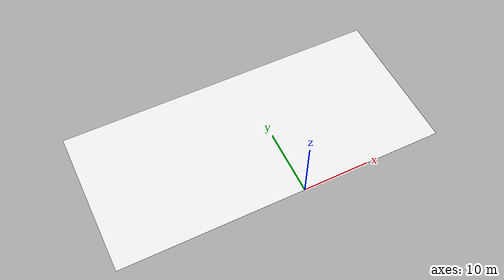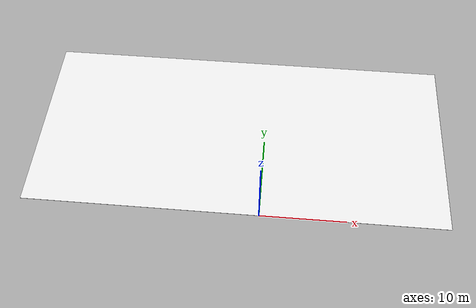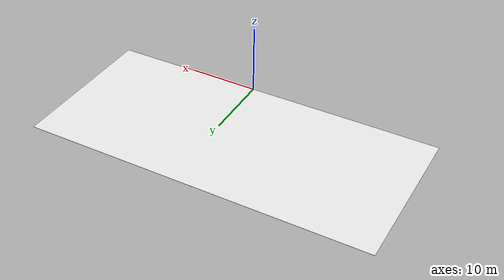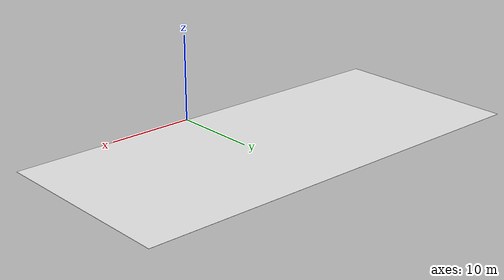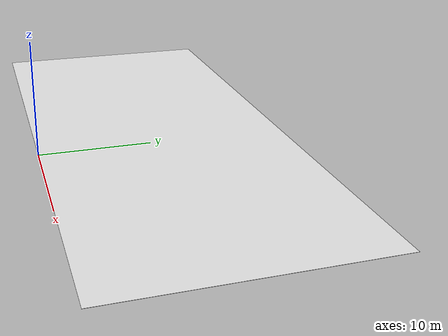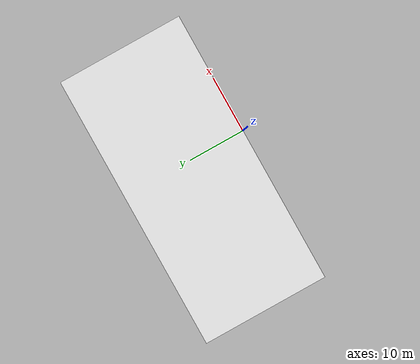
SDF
<sdf version="1.6">
 <world name="default">
  <model name="ceiling">
   <pose>-2.9699999999999998        11.25        3.0        0        3.141592653589793        0</pose>
   <static>true</static>
   <link name="link">
    <visual name="visual">
     <geometry><plane><normal>0 0 1</normal><size>49.5 22.5</size></plane></geometry>
     <material>
      <ambient>1 1 1 1</ambient>
      <diffuse>1 1 1 1</diffuse>
      <specular>0.2 0.2 0.2 1</specular>
      <pbr>
       <metal>
        <albedo_map>../media/materials/textures/ceiling.png</albedo_map>
        <metalness>0.0</metalness>
        <roughness>0.9</roughness>
       </metal>
      </pbr>
     </material>
    </visual>
   </link>
  </model>
  <model name="floor">
   <pose>-2.9699999999999998        11.25        -0.001        0        0        0</pose>
   <static>true</static>
   <link name="link">
    <visual name="visual">
     <geometry><plane><normal>0 0 1</normal><size>49.5 22.5</size></plane></geometry>
     <material>
      <ambient>1 1 1 1</ambient>
      <diffuse>1 1 1 1</diffuse>
      <specular>0.2 0.2 0.2 1</specular>
      <pbr>
       <metal>
        <albedo_map>../media/materials/textures/hallway.png</albedo_map>
        <metalness>0.0</metalness>
        <roughness>0.9</roughness>
       </metal>
      </pbr>
     </material>
    </visual>
    <collision name="collision">
     <geometry><plane><normal>0 0 1</normal><size>49.5 22.5</size></plane></geometry>
     <surface><friction><ode><mu>1</mu><mu2>1</mu2></ode></friction></surface>
    </collision>
   </link>
  </model>
 </world>
</sdf>
